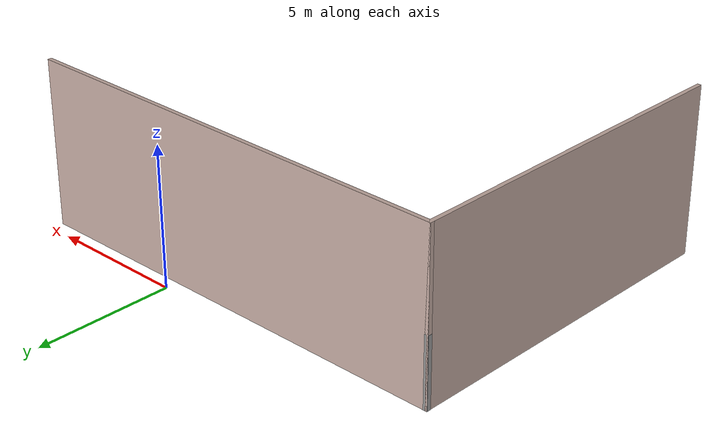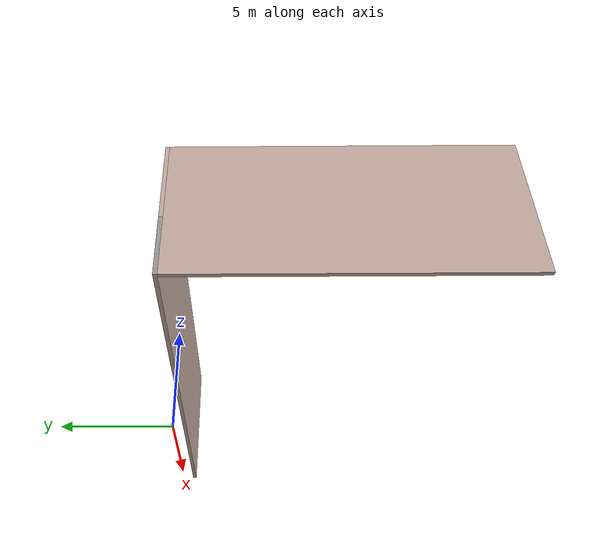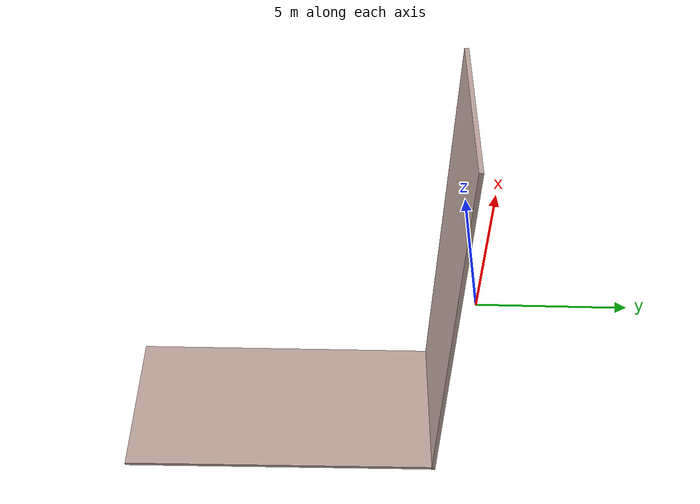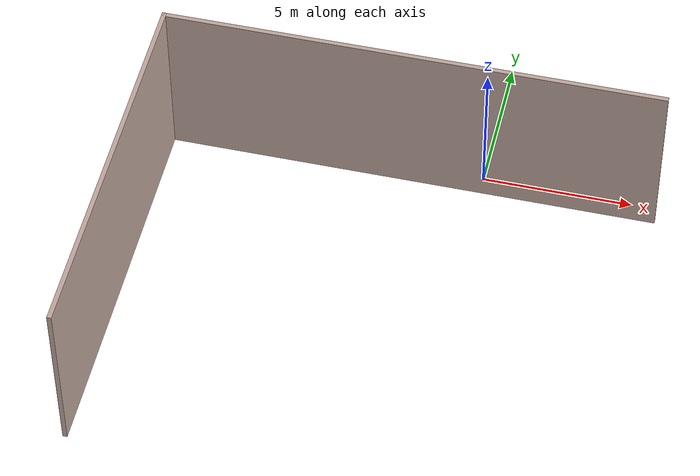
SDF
<?xml version='1.0'?>
<sdf version='1.6'>
  <model name='wall_2'>
    <pose frame=''>-2.39577 -6.82213 0 0 -0 0</pose>
    <link name='Wall_2'>
      <collision name='Wall_2_Collision'>
        <geometry>
          <box>
            <size>0.16 0.15 2.5</size>
          </box>
        </geometry>
        <pose frame=''>0 0 1.25 0 -0 0</pose>
      </collision>
      <visual name='Wall_2_Visual'>
        <pose frame=''>0 0 1.25 0 -0 0</pose>
        <geometry>
          <box>
            <size>0.16 0.15 2.5</size>
          </box>
        </geometry>
        <material>
          <script>
            <uri>file://media/materials/scripts/gazebo.material</uri>
            <name>Gazebo/Grey</name>
          </script>
          <ambient>1 1 1 1</ambient>
        </material>
      </visual>
      <pose frame=''>-8.17403 6.29902 0 0 -0 0.023433</pose>
    </link>
    <link name='Wall_3'>
      <collision name='Wall_3_Collision'>
        <geometry>
          <box>
            <size>16.5 0.15 6</size>
          </box>
        </geometry>
        <pose frame=''>0 0 3 0 -0 0</pose>
      </collision>
      <visual name='Wall_3_Visual'>
        <pose frame=''>0 0 3 0 -0 0</pose>
        <geometry>
          <box>
            <size>16.5 0.15 6</size>
          </box>
        </geometry>
        <material>
          <script>
            <uri>file://media/materials/scripts/gazebo.material</uri>
            <name>Gazebo/Grey</name>
          </script>
          <ambient>0.760784 0.662745 0.627451 1</ambient>
        </material>
      </visual>
      <pose frame=''>0.005768 6.29913 0 0 -0 0</pose>
    </link>
    <link name='Wall_5'>
      <collision name='Wall_5_Collision'>
        <geometry>
          <box>
            <size>12.75 0.15 6</size>
          </box>
        </geometry>
        <pose frame=''>0 0 3 0 -0 0</pose>
      </collision>
      <visual name='Wall_5_Visual'>
        <pose frame=''>0 0 3 0 -0 0</pose>
        <geometry>
          <box>
            <size>12.75 0.15 6</size>
          </box>
        </geometry>
        <material>
          <script>
            <uri>file://media/materials/scripts/gazebo.material</uri>
            <name>Gazebo/Grey</name>
          </script>
          <ambient>0.760784 0.662745 0.627451 1</ambient>
        </material>
      </visual>
      <pose frame=''>-8.16923 -0.00087 0 0 0 -1.5708</pose>
    </link>
    <static>1</static>
  </model>
</sdf>
